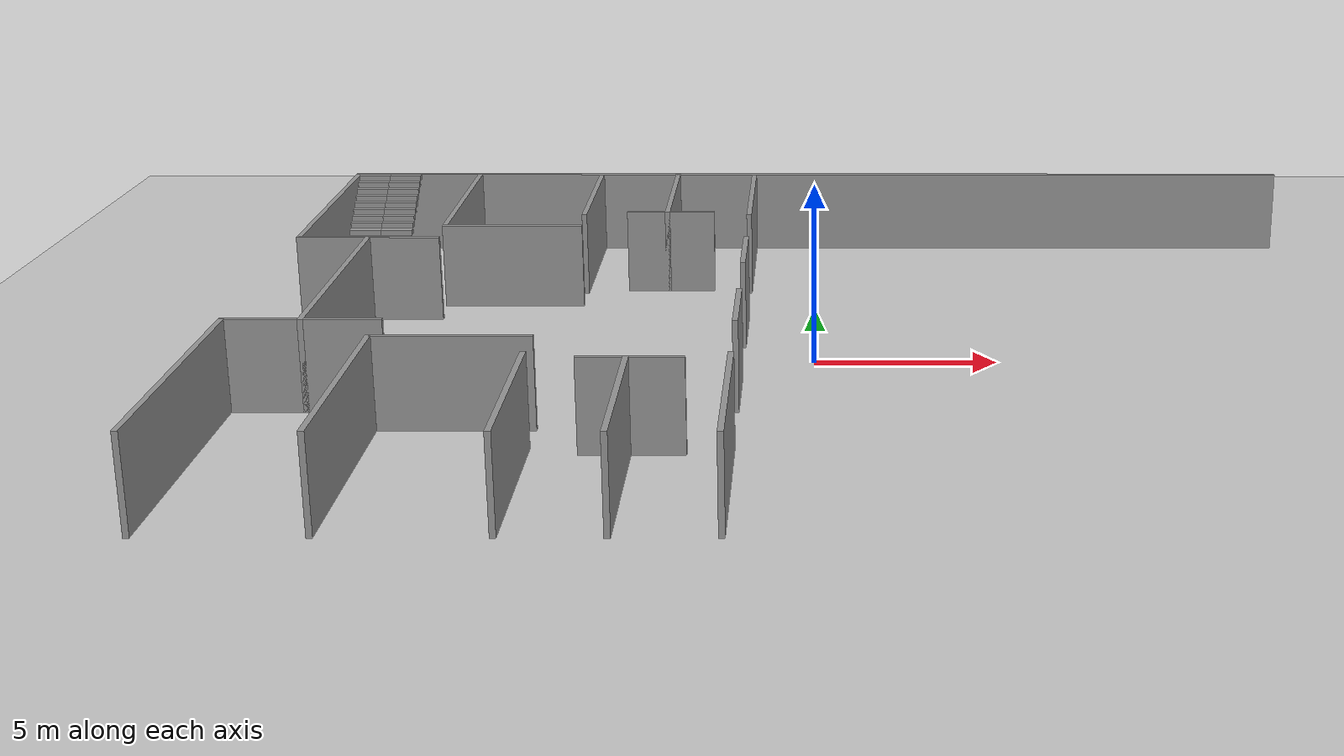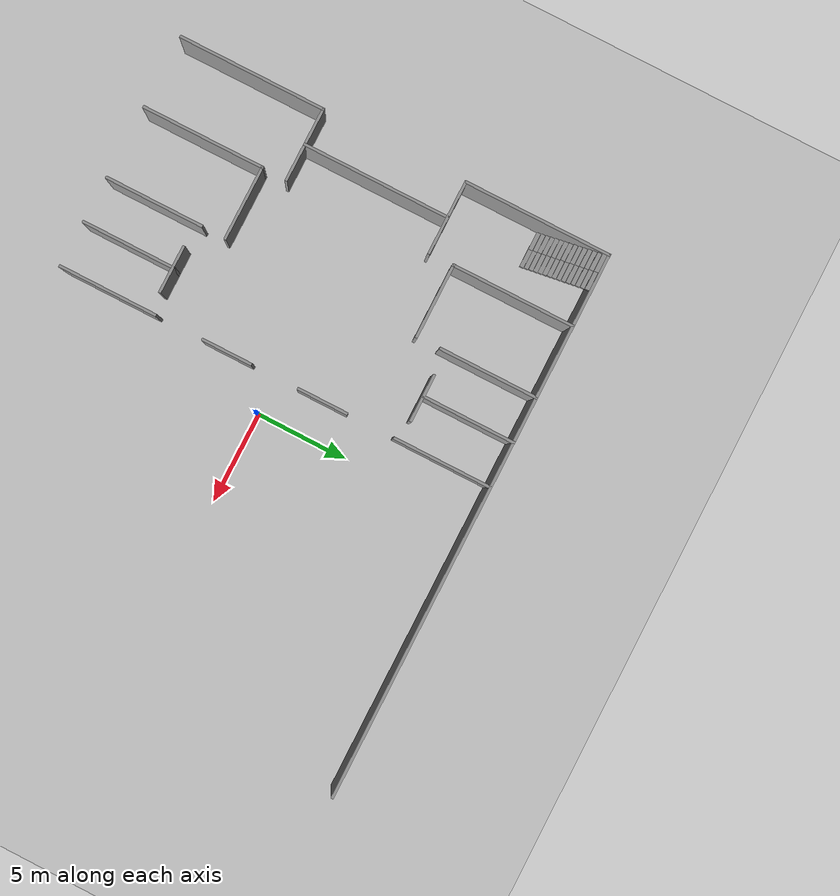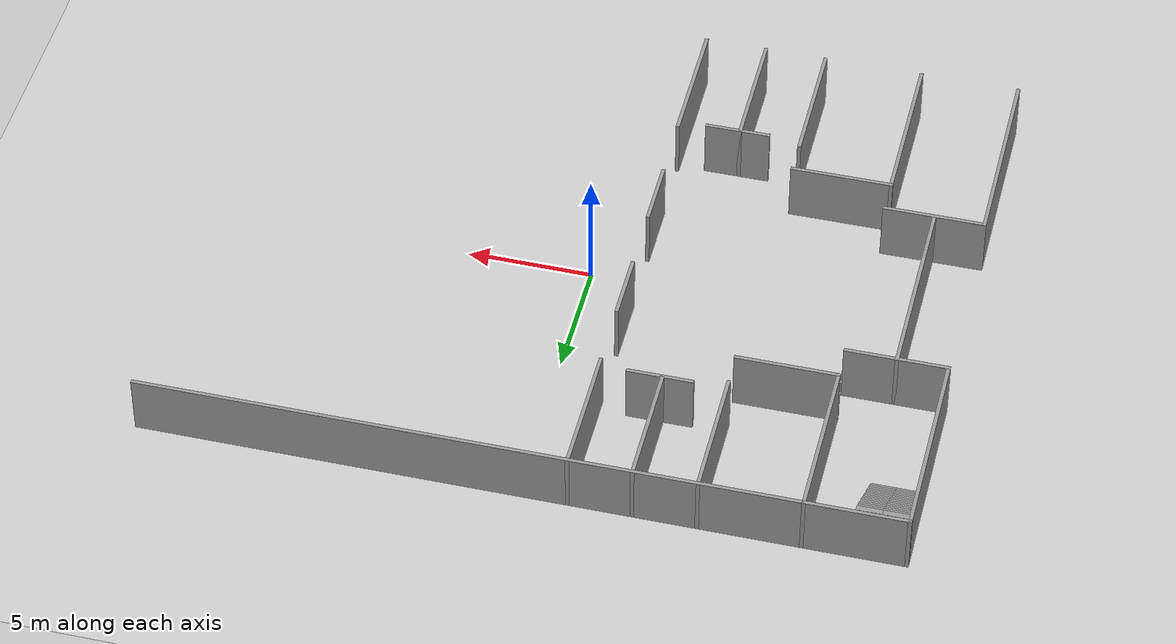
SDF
<sdf version="1.6">
 <world name="default">
  <model name="ground_plane">
   <static>1</static>
   <link name="link">
    <collision name="collision">
     <geometry><plane><normal>0 0 1</normal><size>100 100</size></plane></geometry>
     <surface>
      <contact><collide_bitmask>65535</collide_bitmask></contact>
      <friction><ode><mu>100</mu><mu2>50</mu2></ode></friction>
     </surface>
    </collision>
    <visual name="visual">
     <cast_shadows>0</cast_shadows>
     <geometry><plane><normal>0 0 1</normal><size>100 100</size></plane></geometry>
     <material>
      <script><uri>file://media/materials/scripts/gazebo.material</uri><name>Gazebo/Grey</name></script>
     </material>
    </visual>
   </link>
  </model>
  <model name="hospital_01">
   <pose>0 0 0 0 0 -1.57</pose>
   <link name="Stairs_2">
    <visual name="Stairs_2_Visual_0">
     <pose>-8.53752 -14.4321 0.083333 0 -0 -1.5708</pose>
     <geometry><box><size>1 0.233333 0.166667</size></box></geometry>
     <material>
      <script><uri>file://media/materials/scripts/gazebo.material</uri><name>Gazebo/Grey</name></script>
      <ambient>1 1 1 1</ambient>
     </material>
     <meta><layer>0</layer></meta>
    </visual>
    <collision name="Stairs_2_Collision_0">
     <geometry><box><size>1 0.233333 0.166667</size></box></geometry>
     <pose>-8.53752 -14.4321 0.083333 0 -0 -1.5708</pose>
    </collision>
    <visual name="Stairs_2_Visual_1">
     <pose>-8.77085 -14.4321 0.25 0 -0 -1.5708</pose>
     <geometry><box><size>1 0.233333 0.166667</size></box></geometry>
     <material>
      <script><uri>file://media/materials/scripts/gazebo.material</uri><name>Gazebo/Grey</name></script>
      <ambient>1 1 1 1</ambient>
     </material>
     <meta><layer>0</layer></meta>
    </visual>
    <collision name="Stairs_2_Collision_1">
     <geometry><box><size>1 0.233333 0.166667</size></box></geometry>
     <pose>-8.77085 -14.4321 0.25 0 -0 -1.5708</pose>
    </collision>
    <visual name="Stairs_2_Visual_2">
     <pose>-9.00418 -14.4321 0.416667 0 -0 -1.5708</pose>
     <geometry><box><size>1 0.233333 0.166667</size></box></geometry>
     <material>
      <script><uri>file://media/materials/scripts/gazebo.material</uri><name>Gazebo/Grey</name></script>
      <ambient>1 1 1 1</ambient>
     </material>
     <meta><layer>0</layer></meta>
    </visual>
    <collision name="Stairs_2_Collision_2">
     <geometry><box><size>1 0.233333 0.166667</size></box></geometry>
     <pose>-9.00418 -14.4321 0.416667 0 -0 -1.5708</pose>
    </collision>
    <visual name="Stairs_2_Visual_3">
     <pose>-9.23752 -14.4321 0.583333 0 -0 -1.5708</pose>
     <geometry><box><size>1 0.233333 0.166667</size></box></geometry>
     <material>
      <script><uri>file://media/materials/scripts/gazebo.material</uri><name>Gazebo/Grey</name></script>
      <ambient>1 1 1 1</ambient>
     </material>
     <meta><layer>0</layer></meta>
    </visual>
    <collision name="Stairs_2_Collision_3">
     <geometry><box><size>1 0.233333 0.166667</size></box></geometry>
     <pose>-9.23752 -14.4321 0.583333 0 -0 -1.5708</pose>
    </collision>
    <visual name="Stairs_2_Visual_4">
     <pose>-9.47085 -14.4321 0.75 0 -0 -1.5708</pose>
     <geometry><box><size>1 0.233333 0.166667</size></box></geometry>
     <material>
      <script><uri>file://media/materials/scripts/gazebo.material</uri><name>Gazebo/Grey</name></script>
      <ambient>1 1 1 1</ambient>
     </material>
     <meta><layer>0</layer></meta>
    </visual>
    <collision name="Stairs_2_Collision_4">
     <geometry><box><size>1 0.233333 0.166667</size></box></geometry>
     <pose>-9.47085 -14.4321 0.75 0 -0 -1.5708</pose>
    </collision>
    <visual name="Stairs_2_Visual_5">
     <pose>-9.70418 -14.4321 0.916667 0 -0 -1.5708</pose>
     <geometry><box><size>1 0.233333 0.166667</size></box></geometry>
     <material>
      <script><uri>file://media/materials/scripts/gazebo.material</uri><name>Gazebo/Grey</name></script>
      <ambient>1 1 1 1</ambient>
     </material>
     <meta><layer>0</layer></meta>
    </visual>
    <collision name="Stairs_2_Collision_5">
     <geometry><box><size>1 0.233333 0.166667</size></box></geometry>
     <pose>-9.70418 -14.4321 0.916667 0 -0 -1.5708</pose>
    </collision>
    <visual name="Stairs_2_Visual_6">
     <pose>-9.93751 -14.432 1.08333 0 -0 -1.5708</pose>
     <geometry><box><size>1 0.233333 0.166667</size></box></geometry>
     <material>
      <script><uri>file://media/materials/scripts/gazebo.material</uri><name>Gazebo/Grey</name></script>
      <ambient>1 1 1 1</ambient>
     </material>
     <meta><layer>0</layer></meta>
    </visual>
    <collision name="Stairs_2_Collision_6">
     <geometry><box><size>1 0.233333 0.166667</size></box></geometry>
     <pose>-9.93751 -14.432 1.08333 0 -0 -1.5708</pose>
    </collision>
    <visual name="Stairs_2_Visual_7">
     <pose>-10.1708 -14.432 1.25 0 -0 -1.5708</pose>
     <geometry><box><size>1 0.233333 0.166667</size></box></geometry>
     <material>
      <script><uri>file://media/materials/scripts/gazebo.material</uri><name>Gazebo/Grey</name></script>
      <ambient>1 1 1 1</ambient>
     </material>
     <meta><layer>0</layer></meta>
    </visual>
    <collision name="Stairs_2_Collision_7">
     <geometry><box><size>1 0.233333 0.166667</size></box></geometry>
     <pose>-10.1708 -14.432 1.25 0 -0 -1.5708</pose>
    </collision>
    <visual name="Stairs_2_Visual_8">
     <pose>-10.4042 -14.432 1.41667 0 -0 -1.5708</pose>
     <geometry><box><size>1 0.233333 0.166667</size></box></geometry>
     <material>
      <script><uri>file://media/materials/scripts/gazebo.material</uri><name>Gazebo/Grey</name></script>
      <ambient>1 1 1 1</ambient>
     </material>
     <meta><layer>0</layer></meta>
    </visual>
    <collision name="Stairs_2_Collision_8">
     <geometry><box><size>1 0.233333 0.166667</size></box></geometry>
     <pose>-10.4042 -14.432 1.41667 0 -0 -1.5708</pose>
    </collision>
    <visual name="Stairs_2_Visual_9">
     <pose>-10.6375 -14.432 1.58333 0 -0 -1.5708</pose>
     <geometry><box><size>1 0.233333 0.166667</size></box></geometry>
     <material>
      <script><uri>file://media/materials/scripts/gazebo.material</uri><name>Gazebo/Grey</name></script>
      <ambient>1 1 1 1</ambient>
     </material>
     <meta><layer>0</layer></meta>
    </visual>
    <collision name="Stairs_2_Collision_9">
     <geometry><box><size>1 0.233333 0.166667</size></box></geometry>
     <pose>-10.6375 -14.432 1.58333 0 -0 -1.5708</pose>
    </collision>
    <visual name="Stairs_2_Visual_10">
     <pose>-10.8708 -14.432 1.75 0 -0 -1.5708</pose>
     <geometry><box><size>1 0.233333 0.166667</size></box></geometry>
     <material>
      <script><uri>file://media/materials/scripts/gazebo.material</uri><name>Gazebo/Grey</name></script>
      <ambient>1 1 1 1</ambient>
     </material>
     <meta><layer>0</layer></meta>
    </visual>
    <collision name="Stairs_2_Collision_10">
     <geometry><box><size>1 0.233333 0.166667</size></box></geometry>
     <pose>-10.8708 -14.432 1.75 0 -0 -1.5708</pose>
    </collision>
    <visual name="Stairs_2_Visual_11">
     <pose>-11.1042 -14.432 1.91667 0 -0 -1.5708</pose>
     <geometry><box><size>1 0.233333 0.166667</size></box></geometry>
     <material>
      <script><uri>file://media/materials/scripts/gazebo.material</uri><name>Gazebo/Grey</name></script>
      <ambient>1 1 1 1</ambient>
     </material>
     <meta><layer>0</layer></meta>
    </visual>
    <collision name="Stairs_2_Collision_11">
     <geometry><box><size>1 0.233333 0.166667</size></box></geometry>
     <pose>-11.1042 -14.432 1.91667 0 -0 -1.5708</pose>
    </collision>
    <visual name="Stairs_2_Visual_12">
     <pose>-11.3375 -14.432 2.08333 0 -0 -1.5708</pose>
     <geometry><box><size>1 0.233333 0.166667</size></box></geometry>
     <material>
      <script><uri>file://media/materials/scripts/gazebo.material</uri><name>Gazebo/Grey</name></script>
      <ambient>1 1 1 1</ambient>
     </material>
     <meta><layer>0</layer></meta>
    </visual>
    <collision name="Stairs_2_Collision_12">
     <geometry><box><size>1 0.233333 0.166667</size></box></geometry>
     <pose>-11.3375 -14.432 2.08333 0 -0 -1.5708</pose>
    </collision>
    <visual name="Stairs_2_Visual_13">
     <pose>-11.5708 -14.432 2.25 0 -0 -1.5708</pose>
     <geometry><box><size>1 0.233333 0.166667</size></box></geometry>
     <material>
      <script><uri>file://media/materials/scripts/gazebo.material</uri><name>Gazebo/Grey</name></script>
      <ambient>1 1 1 1</ambient>
     </material>
     <meta><layer>0</layer></meta>
    </visual>
    <collision name="Stairs_2_Collision_13">
     <geometry><box><size>1 0.233333 0.166667</size></box></geometry>
     <pose>-11.5708 -14.432 2.25 0 -0 -1.5708</pose>
    </collision>
    <visual name="Stairs_2_Visual_14">
     <pose>-11.8042 -14.432 2.41667 0 -0 -1.5708</pose>
     <geometry><box><size>1 0.233333 0.166667</size></box></geometry>
     <material>
      <script><uri>file://media/materials/scripts/gazebo.material</uri><name>Gazebo/Grey</name></script>
      <ambient>1 1 1 1</ambient>
     </material>
     <meta><layer>0</layer></meta>
    </visual>
    <collision name="Stairs_2_Collision_14">
     <geometry><box><size>1 0.233333 0.166667</size></box></geometry>
     <pose>-11.8042 -14.432 2.41667 0 -0 -1.5708</pose>
    </collision>
   </link>
   <link name="Stairs_6">
    <visual name="Stairs_6_Visual_0">
     <pose>-8.53689 -13.4368 0.083333 0 -0 -1.5708</pose>
     <geometry><box><size>1 0.233333 0.166667</size></box></geometry>
     <material>
      <script><uri>file://media/materials/scripts/gazebo.material</uri><name>Gazebo/Grey</name></script>
      <ambient>1 1 1 1</ambient>
     </material>
     <meta><layer>0</layer></meta>
    </visual>
    <collision name="Stairs_6_Collision_0">
     <geometry><box><size>1 0.233333 0.166667</size></box></geometry>
     <pose>-8.53689 -13.4368 0.083333 0 -0 -1.5708</pose>
    </collision>
    <visual name="Stairs_6_Visual_1">
     <pose>-8.77022 -13.4368 0.25 0 -0 -1.5708</pose>
     <geometry><box><size>1 0.233333 0.166667</size></box></geometry>
     <material>
      <script><uri>file://media/materials/scripts/gazebo.material</uri><name>Gazebo/Grey</name></script>
      <ambient>1 1 1 1</ambient>
     </material>
     <meta><layer>0</layer></meta>
    </visual>
    <collision name="Stairs_6_Collision_1">
     <geometry><box><size>1 0.233333 0.166667</size></box></geometry>
     <pose>-8.77022 -13.4368 0.25 0 -0 -1.5708</pose>
    </collision>
    <visual name="Stairs_6_Visual_2">
     <pose>-9.00356 -13.4368 0.416667 0 -0 -1.5708</pose>
     <geometry><box><size>1 0.233333 0.166667</size></box></geometry>
     <material>
      <script><uri>file://media/materials/scripts/gazebo.material</uri><name>Gazebo/Grey</name></script>
      <ambient>1 1 1 1</ambient>
     </material>
     <meta><layer>0</layer></meta>
    </visual>
    <collision name="Stairs_6_Collision_2">
     <geometry><box><size>1 0.233333 0.166667</size></box></geometry>
     <pose>-9.00356 -13.4368 0.416667 0 -0 -1.5708</pose>
    </collision>
    <visual name="Stairs_6_Visual_3">
     <pose>-9.23689 -13.4368 0.583333 0 -0 -1.5708</pose>
     <geometry><box><size>1 0.233333 0.166667</size></box></geometry>
     <material>
      <script><uri>file://media/materials/scripts/gazebo.material</uri><name>Gazebo/Grey</name></script>
      <ambient>1 1 1 1</ambient>
     </material>
     <meta><layer>0</layer></meta>
    </visual>
    <collision name="Stairs_6_Collision_3">
     <geometry><box><size>1 0.233333 0.166667</size></box></geometry>
     <pose>-9.23689 -13.4368 0.583333 0 -0 -1.5708</pose>
    </collision>
    <visual name="Stairs_6_Visual_4">
     <pose>-9.47022 -13.4368 0.75 0 -0 -1.5708</pose>
     <geometry><box><size>1 0.233333 0.166667</size></box></geometry>
     <material>
      <script><uri>file://media/materials/scripts/gazebo.material</uri><name>Gazebo/Grey</name></script>
      <ambient>1 1 1 1</ambient>
     </material>
     <meta><layer>0</layer></meta>
    </visual>
    <collision name="Stairs_6_Collision_4">
     <geometry><box><size>1 0.233333 0.166667</size></box></geometry>
     <pose>-9.47022 -13.4368 0.75 0 -0 -1.5708</pose>
    </collision>
    <visual name="Stairs_6_Visual_5">
     <pose>-9.70356 -13.4368 0.916667 0 -0 -1.5708</pose>
     <geometry><box><size>1 0.233333 0.166667</size></box></geometry>
     <material>
      <script><uri>file://media/materials/scripts/gazebo.material</uri><name>Gazebo/Grey</name></script>
      <ambient>1 1 1 1</ambient>
     </material>
     <meta><layer>0</layer></meta>
    </visual>
    <collision name="Stairs_6_Collision_5">
     <geometry><box><size>1 0.233333 0.166667</size></box></geometry>
     <pose>-9.70356 -13.4368 0.916667 0 -0 -1.5708</pose>
    </collision>
    <visual name="Stairs_6_Visual_6">
     <pose>-9.93689 -13.4368 1.08333 0 -0 -1.5708</pose>
     <geometry><box><size>1 0.233333 0.166667</size></box></geometry>
     <material>
      <script><uri>file://media/materials/scripts/gazebo.material</uri><name>Gazebo/Grey</name></script>
      <ambient>1 1 1 1</ambient>
     </material>
     <meta><layer>0</layer></meta>
    </visual>
    <collision name="Stairs_6_Collision_6">
     <geometry><box><size>1 0.233333 0.166667</size></box></geometry>
     <pose>-9.93689 -13.4368 1.08333 0 -0 -1.5708</pose>
    </collision>
    <visual name="Stairs_6_Visual_7">
     <pose>-10.1702 -13.4368 1.25 0 -0 -1.5708</pose>
     <geometry><box><size>1 0.233333 0.166667</size></box></geometry>
     <material>
      <script><uri>file://media/materials/scripts/gazebo.material</uri><name>Gazebo/Grey</name></script>
      <ambient>1 1 1 1</ambient>
     </material>
     <meta><layer>0</layer></meta>
    </visual>
    <collision name="Stairs_6_Collision_7">
     <geometry><box><size>1 0.233333 0.166667</size></box></geometry>
     <pose>-10.1702 -13.4368 1.25 0 -0 -1.5708</pose>
    </collision>
    <visual name="Stairs_6_Visual_8">
     <pose>-10.4036 -13.4368 1.41667 0 -0 -1.5708</pose>
     <geometry><box><size>1 0.233333 0.166667</size></box></geometry>
     <material>
      <script><uri>file://media/materials/scripts/gazebo.material</uri><name>Gazebo/Grey</name></script>
      <ambient>1 1 1 1</ambient>
     </material>
     <meta><layer>0</layer></meta>
    </visual>
    <collision name="Stairs_6_Collision_8">
     <geometry><box><size>1 0.233333 0.166667</size></box></geometry>
     <pose>-10.4036 -13.4368 1.41667 0 -0 -1.5708</pose>
    </collision>
    <visual name="Stairs_6_Visual_9">
     <pose>-10.6369 -13.4368 1.58333 0 -0 -1.5708</pose>
     <geometry><box><size>1 0.233333 0.166667</size></box></geometry>
     <material>
      <script><uri>file://media/materials/scripts/gazebo.material</uri><name>Gazebo/Grey</name></script>
      <ambient>1 1 1 1</ambient>
     </material>
     <meta><layer>0</layer></meta>
    </visual>
    <collision name="Stairs_6_Collision_9">
     <geometry><box><size>1 0.233333 0.166667</size></box></geometry>
     <pose>-10.6369 -13.4368 1.58333 0 -0 -1.5708</pose>
    </collision>
    <visual name="Stairs_6_Visual_10">
     <pose>-10.8702 -13.4368 1.75 0 -0 -1.5708</pose>
     <geometry><box><size>1 0.233333 0.166667</size></box></geometry>
     <material>
      <script><uri>file://media/materials/scripts/gazebo.material</uri><name>Gazebo/Grey</name></script>
      <ambient>1 1 1 1</ambient>
     </material>
     <meta><layer>0</layer></meta>
    </visual>
    <collision name="Stairs_6_Collision_10">
     <geometry><box><size>1 0.233333 0.166667</size></box></geometry>
     <pose>-10.8702 -13.4368 1.75 0 -0 -1.5708</pose>
    </collision>
    <visual name="Stairs_6_Visual_11">
     <pose>-11.1036 -13.4368 1.91667 0 -0 -1.5708</pose>
     <geometry><box><size>1 0.233333 0.166667</size></box></geometry>
     <material>
      <script><uri>file://media/materials/scripts/gazebo.material</uri><name>Gazebo/Grey</name></script>
      <ambient>1 1 1 1</ambient>
     </material>
     <meta><layer>0</layer></meta>
    </visual>
    <collision name="Stairs_6_Collision_11">
     <geometry><box><size>1 0.233333 0.166667</size></box></geometry>
     <pose>-11.1036 -13.4368 1.91667 0 -0 -1.5708</pose>
    </collision>
    <visual name="Stairs_6_Visual_12">
     <pose>-11.3369 -13.4368 2.08333 0 -0 -1.5708</pose>
     <geometry><box><size>1 0.233333 0.166667</size></box></geometry>
     <material>
      <script><uri>file://media/materials/scripts/gazebo.material</uri><name>Gazebo/Grey</name></script>
      <ambient>1 1 1 1</ambient>
     </material>
     <meta><layer>0</layer></meta>
    </visual>
    <collision name="Stairs_6_Collision_12">
     <geometry><box><size>1 0.233333 0.166667</size></box></geometry>
     <pose>-11.3369 -13.4368 2.08333 0 -0 -1.5708</pose>
    </collision>
    <visual name="Stairs_6_Visual_13">
     <pose>-11.5702 -13.4368 2.25 0 -0 -1.5708</pose>
     <geometry><box><size>1 0.233333 0.166667</size></box></geometry>
     <material>
      <script><uri>file://media/materials/scripts/gazebo.material</uri><name>Gazebo/Grey</name></script>
      <ambient>1 1 1 1</ambient>
     </material>
     <meta><layer>0</layer></meta>
    </visual>
    <collision name="Stairs_6_Collision_13">
     <geometry><box><size>1 0.233333 0.166667</size></box></geometry>
     <pose>-11.5702 -13.4368 2.25 0 -0 -1.5708</pose>
    </collision>
    <visual name="Stairs_6_Visual_14">
     <pose>-11.8036 -13.4368 2.41667 0 -0 -1.5708</pose>
     <geometry><box><size>1 0.233333 0.166667</size></box></geometry>
     <material>
      <script><uri>file://media/materials/scripts/gazebo.material</uri><name>Gazebo/Grey</name></script>
      <ambient>1 1 1 1</ambient>
     </material>
     <meta><layer>0</layer></meta>
    </visual>
    <collision name="Stairs_6_Collision_14">
     <geometry><box><size>1 0.233333 0.166667</size></box></geometry>
     <pose>-11.8036 -13.4368 2.41667 0 -0 -1.5708</pose>
    </collision>
   </link>
   <link name="Wall_109">
    <collision name="Wall_109_Collision">
     <geometry><box><size>2.8 0.15 2.5</size></box></geometry>
     <pose>0 0 1.25 0 -0 0</pose>
    </collision>
    <visual name="Wall_109_Visual">
     <pose>0 0 1.25 0 -0 0</pose>
     <geometry><box><size>2.8 0.15 2.5</size></box></geometry>
     <material>
      <script><uri>file://media/materials/scripts/gazebo.material</uri><name>Gazebo/Grey</name></script>
      <ambient>1 1 1 1</ambient>
     </material>
     <meta><layer>0</layer></meta>
    </visual>
    <pose>-2.675 -2 0 0 -0 0</pose>
   </link>
   <link name="Wall_113">
    <collision name="Wall_113_Collision">
     <geometry><box><size>2.8 0.15 2.5</size></box></geometry>
     <pose>0 0 1.25 0 -0 0</pose>
    </collision>
    <visual name="Wall_113_Visual">
     <pose>0 0 1.25 0 -0 0</pose>
     <geometry><box><size>2.8 0.15 2.5</size></box></geometry>
     <material>
      <script><uri>file://media/materials/scripts/gazebo.material</uri><name>Gazebo/Grey</name></script>
      <ambient>1 1 1 1</ambient>
     </material>
     <meta><layer>0</layer></meta>
    </visual>
    <pose>2.675 -2 0 0 -0 3.14159</pose>
   </link>
   <link name="Wall_19">
    <collision name="Wall_19_Collision">
     <geometry><box><size>8.15 0.15 2.5</size></box></geometry>
     <pose>0 0 1.25 0 -0 0</pose>
    </collision>
    <visual name="Wall_19_Visual">
     <pose>0 0 1.25 0 -0 0</pose>
     <geometry><box><size>8.15 0.15 2.5</size></box></geometry>
     <material>
      <script><uri>file://media/materials/scripts/gazebo.material</uri><name>Gazebo/Grey</name></script>
      <ambient>1 1 1 1</ambient>
     </material>
     <meta><layer>0</layer></meta>
    </visual>
    <pose>0 -13 0 0 -0 0</pose>
   </link>
   <link name="Wall_21">
    <collision name="Wall_21_Collision">
     <geometry><box><size>4.15 0.15 2.5</size></box></geometry>
     <pose>0 0 1.25 0 -0 0</pose>
    </collision>
    <visual name="Wall_21_Visual">
     <pose>0 0 1.25 0 -0 0</pose>
     <geometry><box><size>4.15 0.15 2.5</size></box></geometry>
     <material>
      <script><uri>file://media/materials/scripts/gazebo.material</uri><name>Gazebo/Grey</name></script>
      <ambient>1 1 1 1</ambient>
     </material>
     <meta><layer>0</layer></meta>
    </visual>
    <pose>-4 -13 0 0 -0 1.5708</pose>
   </link>
   <link name="Wall_23">
    <collision name="Wall_23_Collision">
     <geometry><box><size>8.15 0.15 2.5</size></box></geometry>
     <pose>0 0 1.25 0 -0 0</pose>
    </collision>
    <visual name="Wall_23_Visual">
     <pose>0 0 1.25 0 -0 0</pose>
     <geometry><box><size>8.15 0.15 2.5</size></box></geometry>
     <material>
      <script><uri>file://media/materials/scripts/gazebo.material</uri><name>Gazebo/Grey</name></script>
      <ambient>1 1 1 1</ambient>
     </material>
     <meta><layer>0</layer></meta>
    </visual>
    <pose>-8 -15 0 0 -0 3.14159</pose>
   </link>
   <link name="Wall_26">
    <collision name="Wall_26_Collision">
     <geometry><box><size>6.8 0.15 2.5</size></box></geometry>
     <pose>0 0 1.25 0 -0 0</pose>
    </collision>
    <visual name="Wall_26_Visual">
     <pose>0 0 1.25 0 -0 0</pose>
     <geometry><box><size>6.8 0.15 2.5</size></box></geometry>
     <material>
      <script><uri>file://media/materials/scripts/gazebo.material</uri><name>Gazebo/Grey</name></script>
      <ambient>1 1 1 1</ambient>
     </material>
     <meta><layer>0</layer></meta>
    </visual>
    <pose>-8.675 -11 0 0 -0 0</pose>
   </link>
   <link name="Wall_30">
    <collision name="Wall_30_Collision">
     <geometry><box><size>4.15 0.15 2.5</size></box></geometry>
     <pose>0 0 1.25 0 -0 0</pose>
    </collision>
    <visual name="Wall_30_Visual">
     <pose>0 0 1.25 0 -0 0</pose>
     <geometry><box><size>4.15 0.15 2.5</size></box></geometry>
     <material>
      <script><uri>file://media/materials/scripts/gazebo.material</uri><name>Gazebo/Grey</name></script>
      <ambient>1 1 1 1</ambient>
     </material>
     <meta><layer>0</layer></meta>
    </visual>
    <pose>-5.35 -9 0 0 -0 1.5708</pose>
   </link>
   <link name="Wall_32">
    <collision name="Wall_32_Collision">
     <geometry><box><size>5.45 0.15 2.5</size></box></geometry>
     <pose>0 0 1.25 0 -0 0</pose>
    </collision>
    <visual name="Wall_32_Visual">
     <pose>0 0 1.25 0 -0 0</pose>
     <geometry><box><size>5.45 0.15 2.5</size></box></geometry>
     <material>
      <script><uri>file://media/materials/scripts/gazebo.material</uri><name>Gazebo/Grey</name></script>
      <ambient>1 1 1 1</ambient>
     </material>
     <meta><layer>0</layer></meta>
    </visual>
    <pose>-9.35 -7 0 0 -0 0</pose>
   </link>
   <link name="Wall_37">
    <collision name="Wall_37_Collision">
     <geometry><box><size>5.15 0.15 2.5</size></box></geometry>
     <pose>0 0 1.25 0 -0 0</pose>
    </collision>
    <visual name="Wall_37_Visual">
     <pose>0 0 1.25 0 -0 0</pose>
     <geometry><box><size>5.15 0.15 2.5</size></box></geometry>
     <material>
      <script><uri>file://media/materials/scripts/gazebo.material</uri><name>Gazebo/Grey</name></script>
      <ambient>1 1 1 1</ambient>
     </material>
     <meta><layer>0</layer></meta>
    </visual>
    <pose>-9.5 -4.5 0 0 -0 0</pose>
   </link>
   <link name="Wall_39">
    <collision name="Wall_39_Collision">
     <geometry><box><size>2.65 0.15 2.5</size></box></geometry>
     <pose>0 0 1.25 0 -0 0</pose>
    </collision>
    <visual name="Wall_39_Visual">
     <pose>0 0 1.25 0 -0 0</pose>
     <geometry><box><size>2.65 0.15 2.5</size></box></geometry>
     <material>
      <script><uri>file://media/materials/scripts/gazebo.material</uri><name>Gazebo/Grey</name></script>
      <ambient>1 1 1 1</ambient>
     </material>
     <meta><layer>0</layer></meta>
    </visual>
    <pose>-7 -4.4 0 0 -0 1.5708</pose>
   </link>
   <link name="Wall_43">
    <collision name="Wall_43_Collision">
     <geometry><box><size>5.45 0.15 2.5</size></box></geometry>
     <pose>0 0 1.25 0 -0 0</pose>
    </collision>
    <visual name="Wall_43_Visual">
     <pose>0 0 1.25 0 -0 0</pose>
     <geometry><box><size>5.45 0.15 2.5</size></box></geometry>
     <material>
      <script><uri>file://media/materials/scripts/gazebo.material</uri><name>Gazebo/Grey</name></script>
      <ambient>1 1 1 1</ambient>
     </material>
     <meta><layer>0</layer></meta>
    </visual>
    <pose>-9.35 -2 0 0 -0 0</pose>
   </link>
   <link name="Wall_61">
    <collision name="Wall_61_Collision">
     <geometry><box><size>30.15 0.15 2.5</size></box></geometry>
     <pose>0 0 1.25 0 -0 0</pose>
    </collision>
    <visual name="Wall_61_Visual">
     <pose>0 0 1.25 0 -0 0</pose>
     <geometry><box><size>30.15 0.15 2.5</size></box></geometry>
     <material>
      <script><uri>file://media/materials/scripts/gazebo.material</uri><name>Gazebo/Grey</name></script>
      <ambient>1 1 1 1</ambient>
     </material>
     <meta><layer>0</layer></meta>
    </visual>
    <pose>-12 0 0 0 -0 1.5708</pose>
   </link>
   <link name="Wall_63">
    <collision name="Wall_63_Collision">
     <geometry><box><size>4.15 0.15 2.5</size></box></geometry>
     <pose>0 0 1.25 0 -0 0</pose>
    </collision>
    <visual name="Wall_63_Visual">
     <pose>0 0 1.25 0 -0 0</pose>
     <geometry><box><size>4.15 0.15 2.5</size></box></geometry>
     <material>
      <script><uri>file://media/materials/scripts/gazebo.material</uri><name>Gazebo/Grey</name></script>
      <ambient>1 1 1 1</ambient>
     </material>
     <meta><layer>0</layer></meta>
    </visual>
    <pose>4 -13 0 0 -0 -1.5708</pose>
   </link>
   <link name="Wall_65">
    <collision name="Wall_65_Collision">
     <geometry><box><size>8.15 0.15 2.5</size></box></geometry>
     <pose>0 0 1.25 0 -0 0</pose>
    </collision>
    <visual name="Wall_65_Visual">
     <pose>0 0 1.25 0 -0 0</pose>
     <geometry><box><size>8.15 0.15 2.5</size></box></geometry>
     <material>
      <script><uri>file://media/materials/scripts/gazebo.material</uri><name>Gazebo/Grey</name></script>
      <ambient>1 1 1 1</ambient>
     </material>
     <meta><layer>0</layer></meta>
    </visual>
    <pose>8 -15 0 0 -0 0</pose>
   </link>
   <link name="Wall_69">
    <collision name="Wall_69_Collision">
     <geometry><box><size>6.8 0.15 2.5</size></box></geometry>
     <pose>0 0 1.25 0 -0 0</pose>
    </collision>
    <visual name="Wall_69_Visual">
     <pose>0 0 1.25 0 -0 0</pose>
     <geometry><box><size>6.8 0.15 2.5</size></box></geometry>
     <material>
      <script><uri>file://media/materials/scripts/gazebo.material</uri><name>Gazebo/Grey</name></script>
      <ambient>1 1 1 1</ambient>
     </material>
     <meta><layer>0</layer></meta>
    </visual>
    <pose>8.675 -11 0 0 -0 0</pose>
   </link>
   <link name="Wall_71">
    <collision name="Wall_71_Collision">
     <geometry><box><size>4.15 0.15 2.5</size></box></geometry>
     <pose>0 0 1.25 0 -0 0</pose>
    </collision>
    <visual name="Wall_71_Visual">
     <pose>0 0 1.25 0 -0 0</pose>
     <geometry><box><size>4.15 0.15 2.5</size></box></geometry>
     <material>
      <script><uri>file://media/materials/scripts/gazebo.material</uri><name>Gazebo/Grey</name></script>
      <ambient>1 1 1 1</ambient>
     </material>
     <meta><layer>0</layer></meta>
    </visual>
    <pose>5.35 -9 0 0 -0 1.5708</pose>
   </link>
   <link name="Wall_73">
    <collision name="Wall_73_Collision">
     <geometry><box><size>5.45 0.15 2.5</size></box></geometry>
     <pose>0 0 1.25 0 -0 0</pose>
    </collision>
    <visual name="Wall_73_Visual">
     <pose>0 0 1.25 0 -0 0</pose>
     <geometry><box><size>5.45 0.15 2.5</size></box></geometry>
     <material>
      <script><uri>file://media/materials/scripts/gazebo.material</uri><name>Gazebo/Grey</name></script>
      <ambient>1 1 1 1</ambient>
     </material>
     <meta><layer>0</layer></meta>
    </visual>
    <pose>9.35 -7 0 0 -0 0</pose>
   </link>
   <link name="Wall_75">
    <collision name="Wall_75_Collision">
     <geometry><box><size>5.15 0.15 2.5</size></box></geometry>
     <pose>0 0 1.25 0 -0 0</pose>
    </collision>
    <visual name="Wall_75_Visual">
     <pose>0 0 1.25 0 -0 0</pose>
     <geometry><box><size>5.15 0.15 2.5</size></box></geometry>
     <material>
      <script><uri>file://media/materials/scripts/gazebo.material</uri><name>Gazebo/Grey</name></script>
      <ambient>1 1 1 1</ambient>
     </material>
     <meta><layer>0</layer></meta>
    </visual>
    <pose>9.5 -4.5 0 0 -0 0</pose>
   </link>
   <link name="Wall_77">
    <collision name="Wall_77_Collision">
     <geometry><box><size>2.65 0.15 2.5</size></box></geometry>
     <pose>0 0 1.25 0 -0 0</pose>
    </collision>
    <visual name="Wall_77_Visual">
     <pose>0 0 1.25 0 -0 0</pose>
     <geometry><box><size>2.65 0.15 2.5</size></box></geometry>
     <material>
      <script><uri>file://media/materials/scripts/gazebo.material</uri><name>Gazebo/Grey</name></script>
      <ambient>1 1 1 1</ambient>
     </material>
     <meta><layer>0</layer></meta>
    </visual>
    <pose>7 -4.4 0 0 -0 1.5708</pose>
   </link>
   <link name="Wall_79">
    <collision name="Wall_79_Collision">
     <geometry><box><size>5.45 0.15 2.5</size></box></geometry>
     <pose>0 0 1.25 0 -0 0</pose>
    </collision>
    <visual name="Wall_79_Visual">
     <pose>0 0 1.25 0 -0 0</pose>
     <geometry><box><size>5.45 0.15 2.5</size></box></geometry>
     <material>
      <script><uri>file://media/materials/scripts/gazebo.material</uri><name>Gazebo/Grey</name></script>
      <ambient>1 1 1 1</ambient>
     </material>
     <meta><layer>0</layer></meta>
    </visual>
    <pose>9.35 -2 0 0 -0 3.14159</pose>
   </link>
   <static>1</static>
  </model>
 </world>
</sdf>
